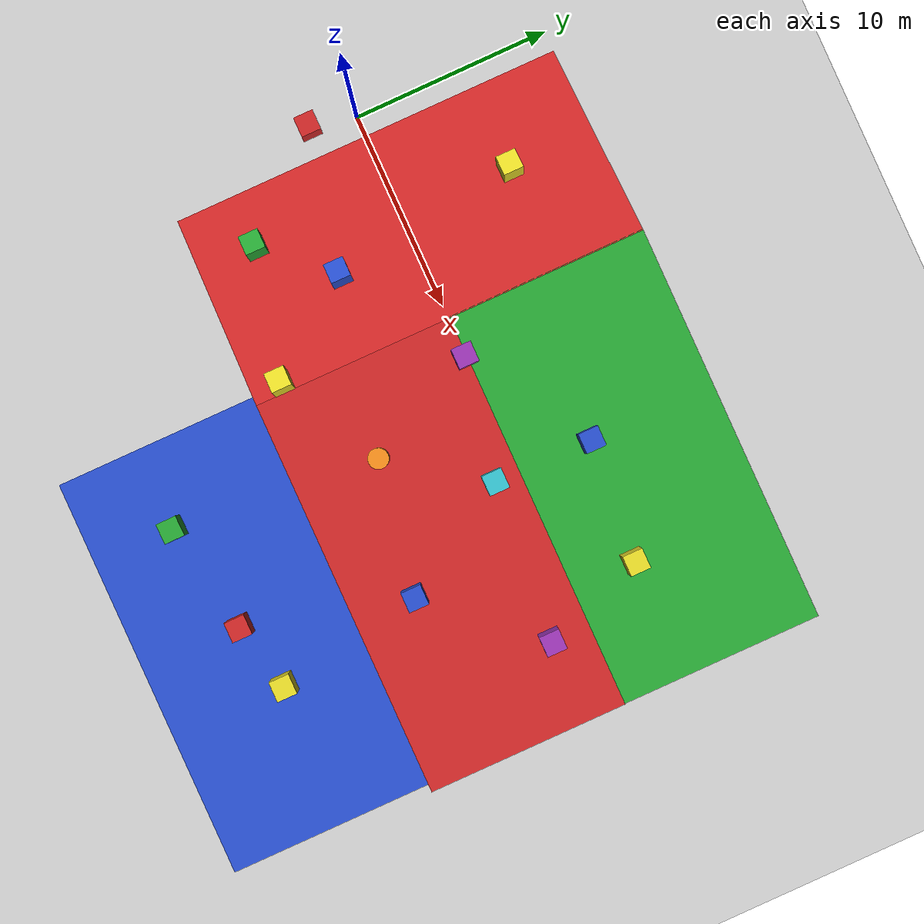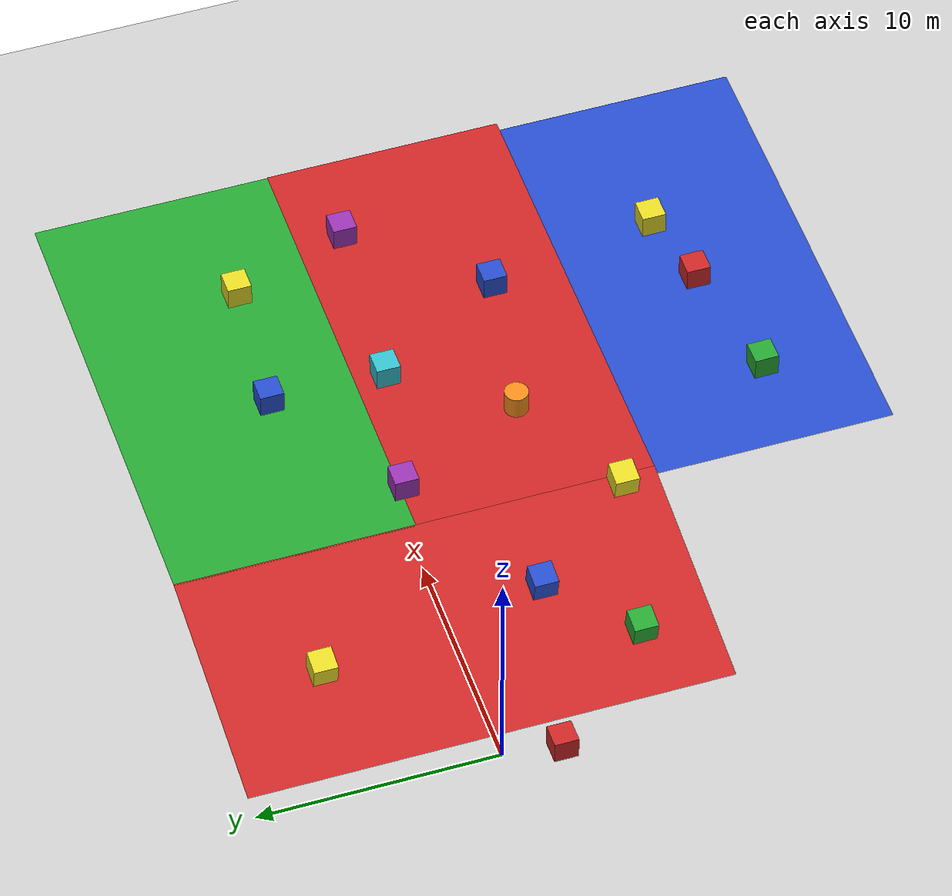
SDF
<sdf version="1.7">
 <world name="default">
  <light name="sun" type="directional">
   <pose>0 0 10 0 -0 0</pose>
   <diffuse>0.8 0.8 0.8 1</diffuse>
   <specular>0.2 0.2 0.2 1</specular>
   <attenuation>
    <range>1000</range>
    <constant>0.9</constant>
    <linear>0.01</linear>
    <quadratic>0.001</quadratic>
   </attenuation>
   <direction>-0.5 0.1 -0.9</direction>
   <spot><inner_angle>0</inner_angle><outer_angle>0</outer_angle><falloff>0</falloff></spot>
  </light>
  <model name="ground_plane">
   <static>1</static>
   <link name="link">
    <collision name="collision">
     <geometry><plane><normal>0 0 1</normal><size>100 100</size></plane></geometry>
     <surface>
      <contact><collide_bitmask>65535</collide_bitmask></contact>
      <friction><ode><mu>100</mu><mu2>50</mu2></ode></friction>
     </surface>
    </collision>
    <visual name="visual">
     <cast_shadows>0</cast_shadows>
     <geometry><plane><normal>0 0 1</normal><size>100 100</size></plane></geometry>
     <material>
      <script><uri>file://media/materials/scripts/gazebo.material</uri><name>Gazebo/Grey</name></script>
     </material>
    </visual>
   </link>
  </model>
  <model name="tilted_floor">
   <static>1</static>
   <pose>1 0 0 0 -0.1745 0</pose>
   <link name="link">
    <pose>5 0 0 0 -0 0</pose>
    <collision name="collision">
     <geometry><box><size>10 20 0</size></box></geometry>
     <surface>
      <contact><collide_bitmask>65535</collide_bitmask></contact>
      <friction><ode><mu>100</mu><mu2>50</mu2></ode></friction>
     </surface>
    </collision>
    <visual name="visual">
     <geometry><box><size>10 20 0</size></box></geometry>
     <material>
      <script><uri>file://media/materials/scripts/gazebo.material</uri><name>Gazebo/Red</name></script>
     </material>
    </visual>
   </link>
  </model>
  <gravity>0 0 -9.8</gravity>
  <magnetic_field>6e-06 2.3e-05 -4.2e-05</magnetic_field>
  <atmosphere type="adiabatic"/>
  <physics name="default_physics" default="0" type="ode">
   <max_step_size>0.001</max_step_size>
   <real_time_factor>1</real_time_factor>
   <real_time_update_rate>1000</real_time_update_rate>
  </physics>
  <scene><ambient>0.4 0.4 0.4 1</ambient><background>0.7 0.7 0.7 1</background><shadows>1</shadows></scene>
  <audio><device>default</device></audio>
  <spherical_coordinates>
   <surface_model>EARTH_WGS84</surface_model>
   <latitude_deg>0</latitude_deg>
   <longitude_deg>0</longitude_deg>
   <elevation>0</elevation>
   <heading_deg>0</heading_deg>
  </spherical_coordinates>
  <model name="tilted_floor_clone_0">
   <static>1</static>
   <pose>20.8215 -0 1.72818 0 0 -1.5708</pose>
   <link name="link">
    <pose>5 0 0 0 -0 0</pose>
    <collision name="collision">
     <geometry><box><size>10 20 0</size></box></geometry>
     <surface>
      <contact><collide_bitmask>65535</collide_bitmask></contact>
      <friction><ode><mu>100</mu><mu2>50</mu2></ode></friction>
     </surface>
    </collision>
    <visual name="visual">
     <geometry><box><size>10 20 0</size></box></geometry>
     <material>
      <script><uri>file://media/materials/scripts/gazebo.material</uri><name>Gazebo/Red</name></script>
     </material>
    </visual>
   </link>
  </model>
  <model name="unit_box">
   <pose>-0.466453 -2.32443 0.499995 -1e-05 -0 -0</pose>
   <link name="link">
    <inertial>
     <mass>1</mass>
     <inertia>
      <ixx>0.166667</ixx>
      <ixy>0</ixy>
      <ixz>0</ixz>
      <iyy>0.166667</iyy>
      <iyz>0</iyz>
      <izz>0.166667</izz>
     </inertia>
    </inertial>
    <collision name="collision"><geometry><box><size>1 1 1</size></box></geometry></collision>
    <visual name="visual">
     <geometry><box><size>1 1 1</size></box></geometry>
     <material>
      <script><name>Gazebo/Red</name><uri>file://media/materials/scripts/gazebo.material</uri></script>
     </material>
    </visual>
   </link>
  </model>
  <model name="unit_box_0">
   <pose>3.76893 -7.03677 0.995851 -0.000967 -0.174491 0.005567</pose>
   <link name="link">
    <inertial>
     <mass>1</mass>
     <inertia>
      <ixx>0.166667</ixx>
      <ixy>0</ixy>
      <ixz>0</ixz>
      <iyy>0.166667</iyy>
      <iyz>0</iyz>
      <izz>0.166667</izz>
     </inertia>
    </inertial>
    <collision name="collision"><geometry><box><size>1 1 1</size></box></geometry></collision>
    <visual name="visual">
     <geometry><box><size>1 1 1</size></box></geometry>
     <material>
      <script><name>Gazebo/Green</name><uri>file://media/materials/scripts/gazebo.material</uri></script>
     </material>
    </visual>
   </link>
  </model>
  <model name="unit_box_1">
   <pose>6.72347 -3.90163 1.51672 0.000159 -0.1745 -0.000914</pose>
   <link name="link">
    <inertial>
     <mass>1</mass>
     <inertia>
      <ixx>0.166667</ixx>
      <ixy>0</ixy>
      <ixz>0</ixz>
      <iyy>0.166667</iyy>
      <iyz>0</iyz>
      <izz>0.166667</izz>
     </inertia>
    </inertial>
    <collision name="collision"><geometry><box><size>1 1 1</size></box></geometry></collision>
    <visual name="visual">
     <geometry><box><size>1 1 1</size></box></geometry>
     <material>
      <script><name>Gazebo/Blue</name><uri>file://media/materials/scripts/gazebo.material</uri></script>
     </material>
    </visual>
   </link>
  </model>
  <model name="unit_box_2">
   <pose>10.2939 -8.49094 2.14616 -0.000422 -0.174499 0.00243</pose>
   <link name="link">
    <inertial>
     <mass>1</mass>
     <inertia>
      <ixx>0.166667</ixx>
      <ixy>0</ixy>
      <ixz>0</ixz>
      <iyy>0.166667</iyy>
      <iyz>0</iyz>
      <izz>0.166667</izz>
     </inertia>
    </inertial>
    <collision name="collision"><geometry><box><size>1 1 1</size></box></geometry></collision>
    <visual name="visual">
     <geometry><box><size>1 1 1</size></box></geometry>
     <material>
      <script><name>Gazebo/Yellow</name><uri>file://media/materials/scripts/gazebo.material</uri></script>
     </material>
    </visual>
   </link>
  </model>
  <model name="unit_cylinder">
   <pose>15.4943 -5.75216 2.22818 0 0 -8.8e-05</pose>
   <link name="link">
    <inertial>
     <mass>1</mass>
     <inertia><ixx>0.145833</ixx><ixy>0</ixy><ixz>0</ixz><iyy>0.145833</iyy><iyz>0</iyz><izz>0.125</izz></inertia>
    </inertial>
    <collision name="collision">
     <geometry><cylinder><radius>0.5</radius><length>1</length></cylinder></geometry>
    </collision>
    <visual name="visual">
     <geometry><cylinder><radius>0.5</radius><length>1</length></cylinder></geometry>
     <material>
      <script><name>Gazebo/Orange</name><uri>file://media/materials/scripts/gazebo.material</uri></script>
     </material>
    </visual>
   </link>
  </model>
  <model name="unit_box_3">
   <pose>12.7866 -0.116215 2.22818 0 -0 1e-05</pose>
   <link name="link">
    <inertial>
     <mass>1</mass>
     <inertia>
      <ixx>0.166667</ixx>
      <ixy>0</ixy>
      <ixz>0</ixz>
      <iyy>0.166667</iyy>
      <iyz>0</iyz>
      <izz>0.166667</izz>
     </inertia>
    </inertial>
    <collision name="collision"><geometry><box><size>1 1 1</size></box></geometry></collision>
    <visual name="visual">
     <geometry><box><size>1 1 1</size></box></geometry>
     <material>
      <script><name>Gazebo/Purple</name><uri>file://media/materials/scripts/gazebo.material</uri></script>
     </material>
    </visual>
   </link>
  </model>
  <model name="unit_box_4">
   <pose>18.7227 -1.25658 2.22817 1e-05 -0 2.8e-05</pose>
   <link name="link">
    <inertial>
     <mass>1</mass>
     <inertia>
      <ixx>0.166667</ixx>
      <ixy>0</ixy>
      <ixz>0</ixz>
      <iyy>0.166667</iyy>
      <iyz>0</iyz>
      <izz>0.166667</izz>
     </inertia>
    </inertial>
    <collision name="collision"><geometry><box><size>1 1 1</size></box></geometry></collision>
    <visual name="visual">
     <geometry><box><size>1 1 1</size></box></geometry>
     <material>
      <script><name>Gazebo/Cyan</name><uri>file://media/materials/scripts/gazebo.material</uri></script>
     </material>
    </visual>
   </link>
  </model>
  <model name="tilted_floor_clone_0_clone">
   <static>1</static>
   <pose>20.7897 10 1.72818 0 0 -1.5708</pose>
   <link name="link">
    <pose>5 0 0 0 -0 0</pose>
    <collision name="collision">
     <geometry><box><size>10 20 0</size></box></geometry>
     <surface>
      <contact><collide_bitmask>65535</collide_bitmask></contact>
      <friction><ode><mu>100</mu><mu2>50</mu2></ode></friction>
     </surface>
    </collision>
    <visual name="visual">
     <geometry><box><size>10 20 0</size></box></geometry>
     <material>
      <script><uri>file://media/materials/scripts/gazebo.material</uri><name>Gazebo/Green</name></script>
     </material>
    </visual>
   </link>
  </model>
  <model name="tilted_floor_clone_0_clone_0">
   <static>1</static>
   <pose>20.4263 -10 1.72818 0 0 -1.5708</pose>
   <link name="link">
    <pose>5 0 0 0 -0 0</pose>
    <collision name="collision">
     <geometry><box><size>10 20 0</size></box></geometry>
     <surface>
      <contact><collide_bitmask>65535</collide_bitmask></contact>
      <friction><ode><mu>100</mu><mu2>50</mu2></ode></friction>
     </surface>
    </collision>
    <visual name="visual">
     <geometry><box><size>10 20 0</size></box></geometry>
     <material>
      <script><uri>file://media/materials/scripts/gazebo.material</uri><name>Gazebo/Blue</name></script>
     </material>
    </visual>
   </link>
  </model>
  <model name="unit_box_2_clone">
   <pose>23.3413 -14.163 2.22818 0 -0 0.001181</pose>
   <link name="link">
    <inertial>
     <mass>1</mass>
     <inertia>
      <ixx>0.166667</ixx>
      <ixy>0</ixy>
      <ixz>0</ixz>
      <iyy>0.166667</iyy>
      <iyz>0</iyz>
      <izz>0.166667</izz>
     </inertia>
    </inertial>
    <collision name="collision"><geometry><box><size>1 1 1</size></box></geometry></collision>
    <visual name="visual">
     <geometry><box><size>1 1 1</size></box></geometry>
     <material>
      <script><name>Gazebo/Yellow</name><uri>file://media/materials/scripts/gazebo.material</uri></script>
     </material>
    </visual>
   </link>
  </model>
  <model name="unit_box_2_clone_0">
   <pose>24.8095 3.15051 2.22818 0 -0 0.001176</pose>
   <link name="link">
    <inertial>
     <mass>1</mass>
     <inertia>
      <ixx>0.166667</ixx>
      <ixy>0</ixy>
      <ixz>0</ixz>
      <iyy>0.166667</iyy>
      <iyz>0</iyz>
      <izz>0.166667</izz>
     </inertia>
    </inertial>
    <collision name="collision"><geometry><box><size>1 1 1</size></box></geometry></collision>
    <visual name="visual">
     <geometry><box><size>1 1 1</size></box></geometry>
     <material>
      <script><name>Gazebo/Yellow</name><uri>file://media/materials/scripts/gazebo.material</uri></script>
     </material>
    </visual>
   </link>
  </model>
  <model name="unit_box_1_clone">
   <pose>18.7932 3.62651 2.22818 -0 -0 -0.000652</pose>
   <link name="link">
    <inertial>
     <mass>1</mass>
     <inertia>
      <ixx>0.166667</ixx>
      <ixy>0</ixy>
      <ixz>0</ixz>
      <iyy>0.166667</iyy>
      <iyz>0</iyz>
      <izz>0.166667</izz>
     </inertia>
    </inertial>
    <collision name="collision"><geometry><box><size>1 1 1</size></box></geometry></collision>
    <visual name="visual">
     <geometry><box><size>1 1 1</size></box></geometry>
     <material>
      <script><name>Gazebo/Blue</name><uri>file://media/materials/scripts/gazebo.material</uri></script>
     </material>
    </visual>
   </link>
  </model>
  <model name="unit_box_1_clone_0">
   <pose>22.1016 -6.89569 2.22818 -4e-06 -0 -0.000653</pose>
   <link name="link">
    <inertial>
     <mass>1</mass>
     <inertia>
      <ixx>0.166667</ixx>
      <ixy>0</ixy>
      <ixz>0</ixz>
      <iyy>0.166667</iyy>
      <iyz>0</iyz>
      <izz>0.166667</izz>
     </inertia>
    </inertial>
    <collision name="collision"><geometry><box><size>1 1 1</size></box></geometry></collision>
    <visual name="visual">
     <geometry><box><size>1 1 1</size></box></geometry>
     <material>
      <script><name>Gazebo/Blue</name><uri>file://media/materials/scripts/gazebo.material</uri></script>
     </material>
    </visual>
   </link>
  </model>
  <model name="unit_box_clone">
   <pose>19.9823 -14.9176 2.22818 -4e-06 -0 5e-06</pose>
   <link name="link">
    <inertial>
     <mass>1</mass>
     <inertia>
      <ixx>0.166667</ixx>
      <ixy>0</ixy>
      <ixz>0</ixz>
      <iyy>0.166667</iyy>
      <iyz>0</iyz>
      <izz>0.166667</izz>
     </inertia>
    </inertial>
    <collision name="collision"><geometry><box><size>1 1 1</size></box></geometry></collision>
    <visual name="visual">
     <geometry><box><size>1 1 1</size></box></geometry>
     <material>
      <script><name>Gazebo/Red</name><uri>file://media/materials/scripts/gazebo.material</uri></script>
     </material>
    </visual>
   </link>
  </model>
  <model name="unit_box_0_clone">
   <pose>14.5203 -15.8892 2.22818 1.5708 -0 0.017836</pose>
   <link name="link">
    <inertial>
     <mass>1</mass>
     <inertia>
      <ixx>0.166667</ixx>
      <ixy>0</ixy>
      <ixz>0</ixz>
      <iyy>0.166667</iyy>
      <iyz>0</iyz>
      <izz>0.166667</izz>
     </inertia>
    </inertial>
    <collision name="collision"><geometry><box><size>1 1 1</size></box></geometry></collision>
    <visual name="visual">
     <geometry><box><size>1 1 1</size></box></geometry>
     <material>
      <script><name>Gazebo/Green</name><uri>file://media/materials/scripts/gazebo.material</uri></script>
     </material>
    </visual>
   </link>
  </model>
  <model name="unit_box_3_clone">
   <pose>26.6147 -1.91011 2.22818 0 -0 5e-06</pose>
   <link name="link">
    <inertial>
     <mass>1</mass>
     <inertia>
      <ixx>0.166667</ixx>
      <ixy>0</ixy>
      <ixz>0</ixz>
      <iyy>0.166667</iyy>
      <iyz>0</iyz>
      <izz>0.166667</izz>
     </inertia>
    </inertial>
    <collision name="collision"><geometry><box><size>1 1 1</size></box></geometry></collision>
    <visual name="visual">
     <geometry><box><size>1 1 1</size></box></geometry>
     <material>
      <script><name>Gazebo/Purple</name><uri>file://media/materials/scripts/gazebo.material</uri></script>
     </material>
    </visual>
   </link>
  </model>
  <model name="unit_box_2_clone_1">
   <pose>5.41056 5.5931 1.28526 -0.000249 -0.1745 0.001455</pose>
   <link name="link">
    <inertial>
     <mass>1</mass>
     <inertia>
      <ixx>0.166667</ixx>
      <ixy>0</ixy>
      <ixz>0</ixz>
      <iyy>0.166667</iyy>
      <iyz>0</iyz>
      <izz>0.166667</izz>
     </inertia>
    </inertial>
    <collision name="collision"><geometry><box><size>1 1 1</size></box></geometry></collision>
    <visual name="visual">
     <geometry><box><size>1 1 1</size></box></geometry>
     <material>
      <script><name>Gazebo/Yellow</name><uri>file://media/materials/scripts/gazebo.material</uri></script>
     </material>
    </visual>
   </link>
  </model>
 </world>
</sdf>
